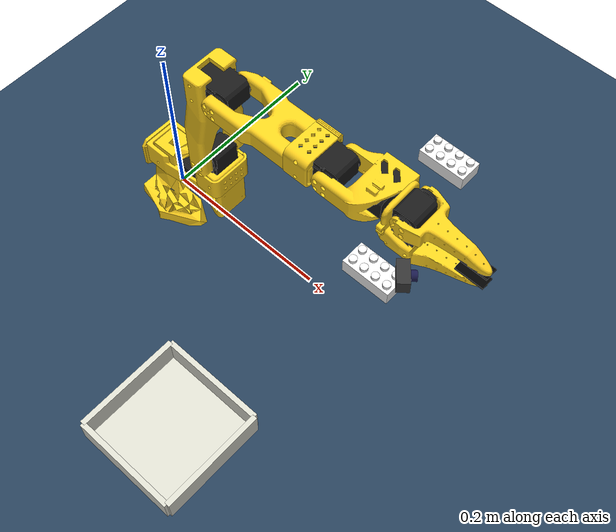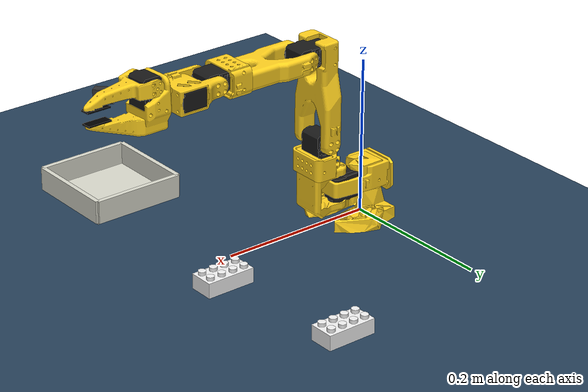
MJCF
<?xml version="1.0" ?>
<!--
SO101 robot model with wrist camera.
Based on so101_new_calib.xml from SO-ARM100 submodule, with wrist camera added.
Mesh files are referenced from the submodule.
-->
<mujoco model="so101_with_wrist_cam">
  <!-- Point to mesh files in submodule -->
  <compiler angle="radian" meshdir="../assets/SO-ARM100/Simulation/SO101/assets" autolimits="true"/>

  <!-- Global simulation options for reliable collision -->
  <option timestep="0.002" impratio="1" gravity="0 0 -9.81" cone="elliptic" noslip_iterations="10"/>

  <visual>
    <headlight diffuse="0.6 0.6 0.6" ambient="0.3 0.3 0.3" specular="0 0 0" />
    <rgba haze="0.15 0.25 0.35 1" />
    <global azimuth="160" elevation="-20" offwidth="1920" offheight="1080"/>
    <quality shadowsize="4096"/>
  </visual>

  <default>
    <default class="so101_new_calib">
      <joint damping="1" frictionloss="0.1" armature="0.005"/>
      <position kp="50"/>
      <default class="visual">
        <geom type="mesh" contype="0" conaffinity="0" group="2"/>
      </default>
      <default class="collision">
        <geom group="3" contype="3" conaffinity="3"/>
      </default>
    </default>
    <default class="sts3215">
      <geom contype="0" conaffinity="0"/>
      <joint damping="0.60" frictionloss="0.052" armature="0.028"/>
      <position kp="17.8"/>
    </default>
    <default class="backlash">
      <joint damping="0.01" frictionloss="0" armature="0.01" limited="true" range="-0.008726646259971648 0.008726646259971648"/>
    </default>
  <default class="fingerpad">
    <geom
      type="box"
      size="0.004 0.015 0.010"
      friction="100 10 0.1"
      condim="6"
      solref="0.002 1"
      solimp="0.999 0.9999 0.00001"
      contype="3"
      conaffinity="3"
      rgba="0.15 0.15 0.15 0.2"
      group="0"
      priority="1"/>
  </default>
  </default>

  <asset>
    <!-- Textures and materials for scene -->
    <texture type="skybox" builtin="gradient" rgb1="0.3 0.5 0.7" rgb2="0 0 0" width="512" height="3072" />
    <texture type="2d" name="groundplane" builtin="checker" mark="edge" rgb1="0.2 0.3 0.4" rgb2="0.1 0.2 0.3" markrgb="0.8 0.8 0.8" width="300" height="300" />
    <material name="groundplane" texture="groundplane" texuniform="true" texrepeat="5 5" reflectance="0.2" />
    <material name="duplo_white" rgba="0.95 0.95 0.95 1" />
    <material name="confuser_white" rgba="0.95 0.95 0.95 1" />

    <!-- Robot meshes from submodule -->
    <mesh file="waveshare_mounting_plate_so101_v2.stl"/>
    <mesh file="sts3215_03a_v1.stl"/>
    <mesh file="motor_holder_so101_base_v1.stl"/>
    <mesh file="wrist_roll_follower_so101_v1.stl"/>
    <mesh file="moving_jaw_so101_v1.stl"/>
    <mesh file="base_motor_holder_so101_v1.stl"/>
    <mesh file="upper_arm_so101_v1.stl"/>
    <mesh file="wrist_roll_pitch_so101_v2.stl"/>
    <mesh file="under_arm_so101_v1.stl"/>
    <mesh file="rotation_pitch_so101_v1.stl"/>
    <mesh file="motor_holder_so101_wrist_v1.stl"/>
    <mesh file="sts3215_03a_no_horn_v1.stl"/>
    <mesh file="base_so101_v2.stl"/>

    <!-- Robot materials -->
    <material name="base_motor_holder_so101_v1_material" rgba="1 0.82 0.12 1"/>
    <material name="base_so101_v2_material" rgba="1 0.82 0.12 1"/>
    <material name="sts3215_03a_v1_material" rgba="0.1 0.1 0.1 1"/>
    <material name="waveshare_mounting_plate_so101_v2_material" rgba="1 0.82 0.12 1"/>
    <material name="motor_holder_so101_base_v1_material" rgba="1 0.82 0.12 1"/>
    <material name="rotation_pitch_so101_v1_material" rgba="1 0.82 0.12 1"/>
    <material name="upper_arm_so101_v1_material" rgba="1 0.82 0.12 1"/>
    <material name="under_arm_so101_v1_material" rgba="1 0.82 0.12 1"/>
    <material name="motor_holder_so101_wrist_v1_material" rgba="1 0.82 0.12 1"/>
    <material name="sts3215_03a_no_horn_v1_material" rgba="0.1 0.1 0.1 1.0"/>
    <material name="wrist_roll_pitch_so101_v2_material" rgba="1 0.82 0.12 1"/>
    <material name="wrist_roll_follower_so101_v1_material" rgba="1 0.82 0.12 1"/>
    <material name="moving_jaw_so101_v1_material" rgba="1 0.82 0.12 1"/>
  </asset>

  <worldbody>
    <!-- Scene elements -->
    <light pos="0 0 3.5" dir="0 0 -1" directional="true" />
    <geom name="floor" size="0 0 0.05" pos="0 0 0" type="plane" material="groundplane" contype="1" conaffinity="3"/>

    <!-- Overhead camera (Nuroum V11: 90° diagonal FOV -> ~52° vertical for 16:9) -->
    <camera name="overhead_cam" pos="0.3 -0.09 0.6" axisangle="0 0 1 -1.5708" fovy="52"/>

    <!-- Bowl/container for pick and place target -->
    <!-- Position: moved 10cm right (-Y) -->
    <!-- Square container with thin walls, 12cm x 12cm x 3cm deep -->
    <body name="bowl" pos="0.217 -0.225 0.0">
      <!-- Base (thin plate) -->
      <geom name="bowl_base" type="box" size="0.06 0.06 0.002" pos="0 0 0.002" rgba="0.85 0.85 0.8 1"
        contype="1" conaffinity="3" friction="0.5 0.5 0.01"/>
      <!-- Walls (4 sides) -->
      <geom name="bowl_wall_px" type="box" size="0.003 0.06 0.015" pos="0.06 0 0.017" rgba="0.85 0.85 0.8 1"
        contype="1" conaffinity="3" friction="0.3 0.3 0.01"/>
      <geom name="bowl_wall_nx" type="box" size="0.003 0.06 0.015" pos="-0.06 0 0.017" rgba="0.85 0.85 0.8 1"
        contype="1" conaffinity="3" friction="0.3 0.3 0.01"/>
      <geom name="bowl_wall_py" type="box" size="0.06 0.003 0.015" pos="0 0.06 0.017" rgba="0.85 0.85 0.8 1"
        contype="1" conaffinity="3" friction="0.3 0.3 0.01"/>
      <geom name="bowl_wall_ny" type="box" size="0.06 0.003 0.015" pos="0 -0.06 0.017" rgba="0.85 0.85 0.8 1"
        contype="1" conaffinity="3" friction="0.3 0.3 0.01" mass="0.1"/>
    </body>

    <!-- White Duplo 2x4 brick for pick and place task -->
    <!-- Duplo 2x4: 64mm x 32mm x 19.2mm body + 4.5mm studs -->
    <!-- Position: moved 10cm left (+Y) -->
    <body name="duplo" pos="0.217 0.225 0.0096">
      <freejoint name="duplo_joint"/>
      <!-- Main brick body - high friction for gripping -->
      <geom name="duplo_body" type="box" size="0.032 0.016 0.0096" material="duplo_white" mass="0.03"
        contype="3" conaffinity="3" friction="100 10 0.1" condim="6" margin="0.001"
        solref="0.002 1" solimp="0.999 0.9999 0.00001"/>
      <!-- Studs (8 total: 4x2 grid, 16mm spacing, 9.6mm diameter, 4.5mm tall) -->
      <!-- Row 1 (y = -0.008) -->
      <geom name="stud_1" type="cylinder" size="0.0048 0.00225" pos="-0.024 -0.008 0.012" material="duplo_white" contype="3" conaffinity="3" friction="100 10 0.1"/>
      <geom name="stud_2" type="cylinder" size="0.0048 0.00225" pos="-0.008 -0.008 0.012" material="duplo_white" contype="3" conaffinity="3" friction="100 10 0.1"/>
      <geom name="stud_3" type="cylinder" size="0.0048 0.00225" pos="0.008 -0.008 0.012" material="duplo_white" contype="3" conaffinity="3" friction="100 10 0.1"/>
      <geom name="stud_4" type="cylinder" size="0.0048 0.00225" pos="0.024 -0.008 0.012" material="duplo_white" contype="3" conaffinity="3" friction="100 10 0.1"/>
      <!-- Row 2 (y = +0.008) -->
      <geom name="stud_5" type="cylinder" size="0.0048 0.00225" pos="-0.024 0.008 0.012" material="duplo_white" contype="3" conaffinity="3" friction="100 10 0.1"/>
      <geom name="stud_6" type="cylinder" size="0.0048 0.00225" pos="-0.008 0.008 0.012" material="duplo_white" contype="3" conaffinity="3" friction="100 10 0.1"/>
      <geom name="stud_7" type="cylinder" size="0.0048 0.00225" pos="0.008 0.008 0.012" material="duplo_white" contype="3" conaffinity="3" friction="100 10 0.1"/>
      <geom name="stud_8" type="cylinder" size="0.0048 0.00225" pos="0.024 0.008 0.012" material="duplo_white" contype="3" conaffinity="3" friction="100 10 0.1"/>
    </body>

    <!-- CONFUSER: White Duplo block at fixed position (distractor during training) -->
    <!-- Position: x=0.25, y=0.05 - visible but separate from main block -->
    <body name="confuser" pos="0.25 0.05 0.0096">
      <freejoint name="confuser_joint"/>
      <geom name="confuser_body" type="box" size="0.032 0.016 0.0096" material="confuser_white" mass="0.03"
        contype="3" conaffinity="3" friction="100 10 0.1" condim="6" margin="0.001"
        solref="0.002 1" solimp="0.999 0.9999 0.00001"/>
      <!-- Studs -->
      <geom name="conf_stud_1" type="cylinder" size="0.0048 0.00225" pos="-0.024 -0.008 0.012" material="confuser_white" contype="3" conaffinity="3" friction="100 10 0.1"/>
      <geom name="conf_stud_2" type="cylinder" size="0.0048 0.00225" pos="-0.008 -0.008 0.012" material="confuser_white" contype="3" conaffinity="3" friction="100 10 0.1"/>
      <geom name="conf_stud_3" type="cylinder" size="0.0048 0.00225" pos="0.008 -0.008 0.012" material="confuser_white" contype="3" conaffinity="3" friction="100 10 0.1"/>
      <geom name="conf_stud_4" type="cylinder" size="0.0048 0.00225" pos="0.024 -0.008 0.012" material="confuser_white" contype="3" conaffinity="3" friction="100 10 0.1"/>
      <geom name="conf_stud_5" type="cylinder" size="0.0048 0.00225" pos="-0.024 0.008 0.012" material="confuser_white" contype="3" conaffinity="3" friction="100 10 0.1"/>
      <geom name="conf_stud_6" type="cylinder" size="0.0048 0.00225" pos="-0.008 0.008 0.012" material="confuser_white" contype="3" conaffinity="3" friction="100 10 0.1"/>
      <geom name="conf_stud_7" type="cylinder" size="0.0048 0.00225" pos="0.008 0.008 0.012" material="confuser_white" contype="3" conaffinity="3" friction="100 10 0.1"/>
      <geom name="conf_stud_8" type="cylinder" size="0.0048 0.00225" pos="0.024 0.008 0.012" material="confuser_white" contype="3" conaffinity="3" friction="100 10 0.1"/>
    </body>

    <!-- Robot arm -->
    <body name="base" pos="0 0 0" quat="1 0 0 0" childclass="so101_new_calib">
      <inertial pos="0.0137179 -5.19711e-05 0.0334843" mass="0.147" fullinertia="0.000114686 0.000136117 0.000130364 -4.59787e-07 4.97151e-06 9.75275e-08"/>
      <geom type="mesh" class="visual" pos="-0.00636471 -9.94414e-05 -0.0024" quat="0.5 0.5 0.5 0.5" mesh="base_motor_holder_so101_v1" material="base_motor_holder_so101_v1_material"/>
      <geom type="mesh" class="visual" pos="-0.00636471 -8.97657e-09 -0.0024" quat="0.5 0.5 0.5 0.5" mesh="base_so101_v2" material="base_so101_v2_material"/>
      <geom type="mesh" class="visual" pos="0.0263353 -8.97657e-09 0.0437" quat="1 -2.85511e-16 -9.64433e-17 6.12908e-16" mesh="sts3215_03a_v1" material="sts3215_03a_v1_material"/>
      <geom type="mesh" class="visual" pos="-0.0309827 -0.000199441 0.0474" quat="0.5 0.5 0.5 0.5" mesh="waveshare_mounting_plate_so101_v2" material="waveshare_mounting_plate_so101_v2_material"/>
      <site group="3" name="baseframe" pos="8.67362e-19 9.55596e-18 3.46945e-18" quat="1 -8.17396e-19 3.78392e-17 2.22045e-16"/>

      <body name="shoulder" pos="0.0388353 -8.97657e-09 0.0624" quat="3.56167e-16 1.22818e-15 -1 -4.14635e-16">
        <joint axis="0 0 1" name="shoulder_pan" type="hinge" range="-1.9198621771937616 1.9198621771937634" class="sts3215"/>
        <inertial pos="-0.0307604 -1.66727e-05 -0.0252713" mass="0.100006" fullinertia="8.3759e-05 8.10403e-05 2.39783e-05 7.55525e-08 -1.16342e-06 1.54663e-07"/>
        <geom type="mesh" class="visual" pos="-0.0303992 0.000422241 -0.0417" quat="0.5 0.5 0.5 -0.5" mesh="sts3215_03a_v1" material="sts3215_03a_v1_material"/>
        <geom type="mesh" class="collision" pos="-0.0303992 0.000422241 -0.0417" quat="0.5 0.5 0.5 -0.5" mesh="sts3215_03a_v1" material="sts3215_03a_v1_material"/>
        <geom type="mesh" class="visual" pos="-0.0675992 -0.000177759 0.0158499" quat="0.5 0.5 -0.5 0.5" mesh="motor_holder_so101_base_v1" material="motor_holder_so101_base_v1_material"/>
        <geom type="mesh" class="collision" pos="-0.0675992 -0.000177759 0.0158499" quat="0.5 0.5 -0.5 0.5" mesh="motor_holder_so101_base_v1" material="motor_holder_so101_base_v1_material"/>
        <geom type="mesh" class="visual" pos="0.0122008 2.22413e-05 0.0464" quat="0.707107 -0.707107 -0 8.3163e-34" mesh="rotation_pitch_so101_v1" material="rotation_pitch_so101_v1_material"/>
        <geom type="mesh" class="collision" pos="0.0122008 2.22413e-05 0.0464" quat="0.707107 -0.707107 -0 8.3163e-34" mesh="rotation_pitch_so101_v1" material="rotation_pitch_so101_v1_material"/>

        <body name="upper_arm" pos="-0.0303992 -0.0182778 -0.0542" quat="0.5 -0.5 -0.5 -0.5">
          <joint axis="0 0 1" name="shoulder_lift" type="hinge" range="-1.7453292519943224 1.7453292519943366" class="sts3215"/>
          <inertial pos="-0.0898471 -0.00838224 0.0184089" mass="0.103" fullinertia="4.08002e-05 0.000147318 0.000142487 -1.97819e-05 -4.03016e-08 8.97326e-09"/>
          <geom type="mesh" class="visual" pos="-0.11257 -0.0155 0.0187" quat="4.56308e-16 -0.707107 0.707107 -1.37383e-16" mesh="sts3215_03a_v1" material="sts3215_03a_v1_material"/>
          <geom type="mesh" class="collision" pos="-0.11257 -0.0155 0.0187" quat="4.56308e-16 -0.707107 0.707107 -1.37383e-16" mesh="sts3215_03a_v1" material="sts3215_03a_v1_material"/>
          <geom type="mesh" class="visual" pos="-0.065085 0.012 0.0182" quat="0 1 0 0" mesh="upper_arm_so101_v1" material="upper_arm_so101_v1_material"/>
          <geom type="mesh" class="collision" pos="-0.065085 0.012 0.0182" quat="0 1 0 0" mesh="upper_arm_so101_v1" material="upper_arm_so101_v1_material"/>

          <body name="lower_arm" pos="-0.11257 -0.028 1.73763e-16" quat="0.707107 -5.98613e-17 -2.58051e-17 0.707107">
            <joint axis="0 0 1" name="elbow_flex" type="hinge" range="-1.69 1.69" class="sts3215"/>
            <inertial pos="-0.0980701 0.00324376 0.0182831" mass="0.104" fullinertia="2.87438e-05 0.000159844 0.00014529 7.41152e-06 1.26409e-06 -4.90188e-08"/>
            <geom type="mesh" class="visual" pos="-0.0648499 -0.032 0.0182" quat="0 1 0 0" mesh="under_arm_so101_v1" material="under_arm_so101_v1_material"/>
            <geom type="mesh" class="collision" pos="-0.0648499 -0.032 0.0182" quat="0 1 0 0" mesh="under_arm_so101_v1" material="under_arm_so101_v1_material"/>
            <geom type="mesh" class="visual" pos="-0.0648499 -0.032 0.018" quat="3.92687e-16 -1 -1.9186e-15 -6.38378e-16" mesh="motor_holder_so101_wrist_v1" material="motor_holder_so101_wrist_v1_material"/>
            <geom type="mesh" class="collision" pos="-0.0648499 -0.032 0.018" quat="3.92687e-16 -1 -1.9186e-15 -6.38378e-16" mesh="motor_holder_so101_wrist_v1" material="motor_holder_so101_wrist_v1_material"/>
            <geom type="mesh" class="visual" pos="-0.1224 0.0052 0.0187" quat="7.21645e-16 1.56949e-15 1 -3.33067e-16" mesh="sts3215_03a_v1" material="sts3215_03a_v1_material"/>
            <geom type="mesh" class="collision" pos="-0.1224 0.0052 0.0187" quat="7.21645e-16 1.56949e-15 1 -3.33067e-16" mesh="sts3215_03a_v1" material="sts3215_03a_v1_material"/>

            <body name="wrist" pos="-0.1349 0.0052 3.62355e-17" quat="0.707107 9.58722e-16 -7.51313e-16 -0.707107">
              <joint axis="0 0 1" name="wrist_flex" type="hinge" range="-1.6580628494556928 1.6580627293335335" class="sts3215"/>
              <inertial pos="-0.000103312 -0.0386143 0.0281156" mass="0.079" fullinertia="3.68263e-05 2.5391e-05 2.1e-05 1.7893e-08 -5.28128e-08 3.6412e-06"/>
              <geom type="mesh" class="visual" pos="8.32667e-17 -0.0424 0.0306" quat="0.5 0.5 0.5 -0.5" mesh="sts3215_03a_no_horn_v1" material="sts3215_03a_no_horn_v1_material"/>
              <geom type="mesh" class="collision" pos="8.32667e-17 -0.0424 0.0306" quat="0.5 0.5 0.5 -0.5" mesh="sts3215_03a_no_horn_v1" material="sts3215_03a_no_horn_v1_material"/>
              <geom type="mesh" class="visual" pos="0 -0.028 0.0181" quat="0.5 -0.5 -0.5 -0.5" mesh="wrist_roll_pitch_so101_v2" material="wrist_roll_pitch_so101_v2_material"/>
              <geom type="mesh" class="collision" pos="0 -0.028 0.0181" quat="0.5 -0.5 -0.5 -0.5" mesh="wrist_roll_pitch_so101_v2" material="wrist_roll_pitch_so101_v2_material"/>

              <body name="gripper" pos="5.55112e-17 -0.0611 0.0181" quat="0.0172091 -0.0172091 0.706897 0.706897">
                <joint axis="0 0 1" name="wrist_roll" type="hinge" range="-2.7438472969992493 2.841206309382605" class="sts3215"/>
                <inertial pos="0.000213627 0.000245138 -0.025187" mass="0.087" fullinertia="2.75087e-05 4.33657e-05 3.45059e-05 -3.35241e-07 -5.7352e-06 -5.17847e-08"/>
                <geom type="mesh" class="visual" pos="0.0077 0.0001 -0.0234" quat="0.707107 -0.707107 1.66015e-15 6.45094e-15" mesh="sts3215_03a_v1" material="sts3215_03a_v1_material"/>
                <geom type="mesh" class="collision" pos="0.0077 0.0001 -0.0234" quat="0.707107 -0.707107 1.66015e-15 6.45094e-15" mesh="sts3215_03a_v1" material="sts3215_03a_v1_material"/>
                <geom type="mesh" class="visual" pos="8.32667e-17 -0.000218214 0.000949706" quat="0 1 0 0" mesh="wrist_roll_follower_so101_v1" material="wrist_roll_follower_so101_v1_material"/>
                <!-- Mesh collision disabled - using box primitives instead -->
                <geom type="mesh" class="visual" pos="8.32667e-17 -0.000218214 0.000949706" quat="0 1 0 0" mesh="wrist_roll_follower_so101_v1" contype="0" conaffinity="0" group="3"/>
                <site group="3" name="gripperframe" pos="-0.0079 -0.000218121 -0.0981274" quat="0.707107 -0 0.707107 -2.37788e-17"/>

                <!-- Fixed jaw finger pad (gripping surface) - BRIGHT RED for debugging -->
                <geom name="fixed_pad"
                  type="box"
                  size="0.001 0.0065 0.015"
                  pos="-0.0085 0.0 -0.0894"
                  contype="3"
                  conaffinity="3"
                  friction="100 10 0.1"
                  condim="6"
                  margin="0.002"
                  solref="0.002 1"
                  solimp="0.999 0.9999 0.00001"
                  rgba="0 0 0 1"
                  priority="1"
                  group="0"/>

                <!-- 1) Anchor -->
                <body name="cam_anchor"
                      pos="0 0 -0.045"
                      quat="1 0 0 0">

                  <!-- 2) Left/right correction (your Z 180° flip) -->
                  <body name="cam_yawfix"
                        axisangle="0 0 1 3.14159265">

                    <!-- 3) Physical camera offset -->
                    <body name="cam_slide"
                          pos="0.000 0.039 -0.01">

                      <!-- 4) Pitch down to see the jaws -->
                      <body name="cam_pitch"
                            axisangle="1 0 0 -0.7">

                        <camera name="wrist_cam"
                                pos="0 0 0"
                                fovy="71"/>

                        <!-- Visual representation of camera (camera looks along -Z) -->
                        <geom name="cam_body" type="box" size="0.008 0.012 0.006" pos="0 0 0.008"
                              rgba="0.2 0.2 0.2 1" contype="0" conaffinity="0"/>
                        <geom name="cam_lens" type="cylinder" size="0.005 0.004" pos="0 0 0"
                              rgba="0.1 0.1 0.3 1" contype="0" conaffinity="0"/>

                      </body>
                    </body>
                  </body>
                </body>

                <body name="moving_jaw_so101_v1" pos="0.0202 0.0188 -0.0234" quat="0.707107 0.707107 -1.85362e-08 1.85362e-08">
                  <joint axis="0 0 1" name="gripper" type="hinge" range="-0.17453297762778586 1.7453291995659765" class="sts3215"/>
                  <inertial pos="-0.00157495 -0.0300244 0.0192755" mass="0.012" fullinertia="6.61427e-06 1.89032e-06 5.28738e-06 -3.19807e-07 -5.90717e-09 -1.09945e-07"/>
                  <geom type="mesh" class="visual" pos="-5.55112e-17 -5.55112e-17 0.0189" quat="1 -0 3.00524e-16 -2.00834e-17" mesh="moving_jaw_so101_v1" material="moving_jaw_so101_v1_material"/>
                  <!-- Mesh collision disabled - using finger pad only -->
                  <geom type="mesh" class="visual" pos="-5.55112e-17 -5.55112e-17 0.0189" quat="1 -0 3.00524e-16 -2.00834e-17" mesh="moving_jaw_so101_v1" contype="0" conaffinity="0" group="3"/>

                  <!-- Moving jaw finger pad (gripping surface) - BRIGHT GREEN for debugging -->
                  <geom name="moving_pad"
                    type="box"
                    size="0.001 0.0065 0.015"
                    pos="-0.012 -0.0669 0.018"
                    axisangle="1 0 0 1.5708"
                    contype="3"
                    conaffinity="3"
                    friction="100 10 0.1"
                    condim="6"
                    margin="0.002"
                    solref="0.002 1"
                    solimp="0.999 0.9999 0.00001"
                    rgba="0 0 0 1"
                    priority="1"
                    group="0"/>

                </body>
              </body>
            </body>
          </body>
        </body>
      </body>
    </body>
  </worldbody>

  <!-- Contact pairs to override friction for specific geom combinations -->
  <contact>
    <!-- Low friction between Duplo and floor (so it falls/slides naturally) -->
    <pair geom1="floor" geom2="duplo_body" friction="0.5 0.5 0.005 0.0001 0.0001"/>
    <pair geom1="floor" geom2="stud_1" friction="0.5 0.5 0.005 0.0001 0.0001"/>
    <pair geom1="floor" geom2="stud_2" friction="0.5 0.5 0.005 0.0001 0.0001"/>
    <pair geom1="floor" geom2="stud_3" friction="0.5 0.5 0.005 0.0001 0.0001"/>
    <pair geom1="floor" geom2="stud_4" friction="0.5 0.5 0.005 0.0001 0.0001"/>
    <pair geom1="floor" geom2="stud_5" friction="0.5 0.5 0.005 0.0001 0.0001"/>
    <pair geom1="floor" geom2="stud_6" friction="0.5 0.5 0.005 0.0001 0.0001"/>
    <pair geom1="floor" geom2="stud_7" friction="0.5 0.5 0.005 0.0001 0.0001"/>
    <pair geom1="floor" geom2="stud_8" friction="0.5 0.5 0.005 0.0001 0.0001"/>
    <!-- Confuser block contacts -->
    <pair geom1="floor" geom2="confuser_body" friction="0.5 0.5 0.005 0.0001 0.0001"/>
    <pair geom1="floor" geom2="conf_stud_1" friction="0.5 0.5 0.005 0.0001 0.0001"/>
    <pair geom1="floor" geom2="conf_stud_2" friction="0.5 0.5 0.005 0.0001 0.0001"/>
    <pair geom1="floor" geom2="conf_stud_3" friction="0.5 0.5 0.005 0.0001 0.0001"/>
    <pair geom1="floor" geom2="conf_stud_4" friction="0.5 0.5 0.005 0.0001 0.0001"/>
    <pair geom1="floor" geom2="conf_stud_5" friction="0.5 0.5 0.005 0.0001 0.0001"/>
    <pair geom1="floor" geom2="conf_stud_6" friction="0.5 0.5 0.005 0.0001 0.0001"/>
    <pair geom1="floor" geom2="conf_stud_7" friction="0.5 0.5 0.005 0.0001 0.0001"/>
    <pair geom1="floor" geom2="conf_stud_8" friction="0.5 0.5 0.005 0.0001 0.0001"/>
    <!-- Low friction between finger pads and floor (so gripper doesn't stick) -->
    <pair geom1="floor" geom2="fixed_pad" friction="0.3 0.3 0.001 0.0001 0.0001"/>
    <pair geom1="floor" geom2="moving_pad" friction="0.3 0.3 0.001 0.0001 0.0001"/>
    <!-- Low friction between Duplo and bowl (so it slides in naturally) -->
    <pair geom1="bowl_base" geom2="duplo_body" friction="0.3 0.3 0.005 0.0001 0.0001"/>
    <pair geom1="bowl_wall_px" geom2="duplo_body" friction="0.3 0.3 0.005 0.0001 0.0001"/>
    <pair geom1="bowl_wall_nx" geom2="duplo_body" friction="0.3 0.3 0.005 0.0001 0.0001"/>
    <pair geom1="bowl_wall_py" geom2="duplo_body" friction="0.3 0.3 0.005 0.0001 0.0001"/>
    <pair geom1="bowl_wall_ny" geom2="duplo_body" friction="0.3 0.3 0.005 0.0001 0.0001"/>
  </contact>

  <actuator>
    <position class="sts3215" name="shoulder_pan" joint="shoulder_pan" forcerange="-3.35 3.35" ctrlrange="-1.91986 1.91986"/>
    <position class="sts3215" name="shoulder_lift" joint="shoulder_lift" forcerange="-3.35 3.35" ctrlrange="-1.74533 1.74533"/>
    <position class="sts3215" name="elbow_flex" joint="elbow_flex" forcerange="-3.35 3.35" ctrlrange="-1.69 1.69"/>
    <position class="sts3215" name="wrist_flex" joint="wrist_flex" forcerange="-3.35 3.35" ctrlrange="-1.65806 1.65806"/>
    <position class="sts3215" name="wrist_roll" joint="wrist_roll" forcerange="-3.35 3.35" ctrlrange="-2.74385 2.84121"/>
    <position class="sts3215" name="gripper" joint="gripper" forcerange="-3.35 3.35" ctrlrange="-0.17453 1.74533"/>
  </actuator>
</mujoco>
